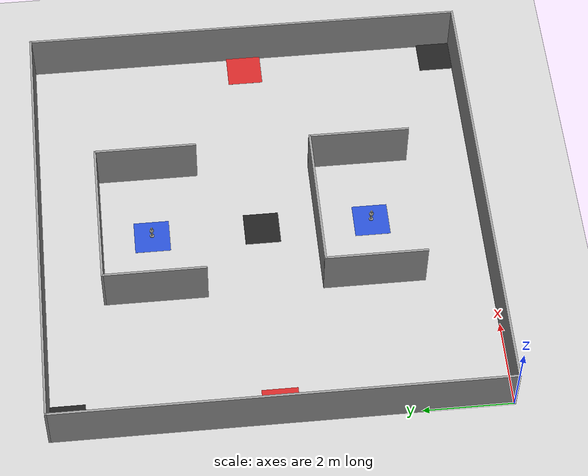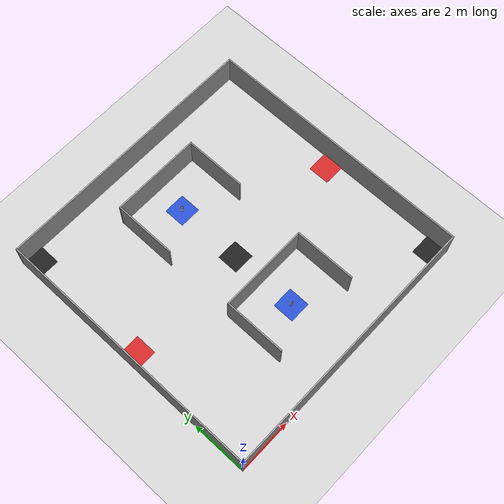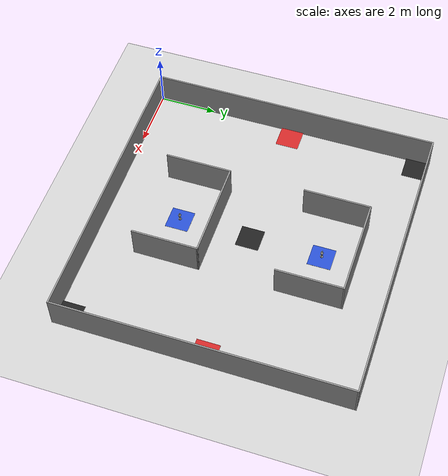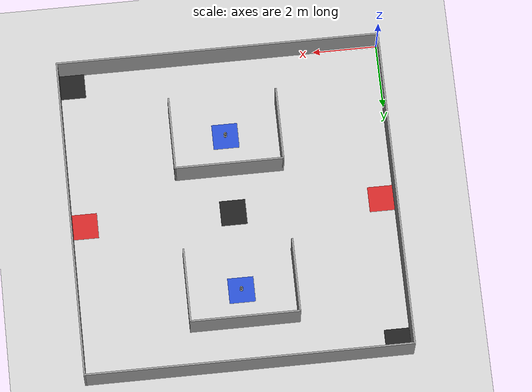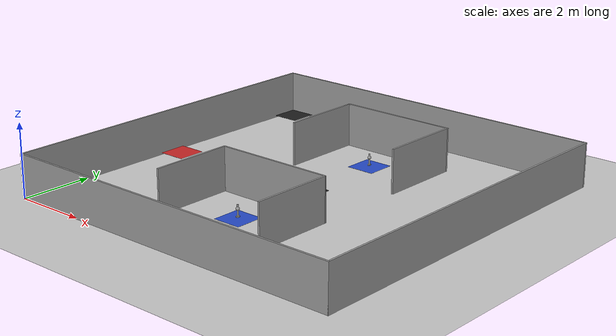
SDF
<sdf version="1.4">
 <world name="default">
  <light name="sun" type="directional">
   <pose>0 0 10 0 -0 0</pose>
   <diffuse>0.8 0.8 0.8 1</diffuse>
   <specular>0.2 0.2 0.2 1</specular>
   <attenuation>
    <range>1000</range>
    <constant>0.9</constant>
    <linear>0.01</linear>
    <quadratic>0.001</quadratic>
   </attenuation>
   <direction>-0.5 0.1 -0.9</direction>
  </light>
  <model name="ground_plane">
   <static>1</static>
   <link name="link">
    <collision name="collision">
     <geometry><plane><normal>0 0 1</normal><size>100 100</size></plane></geometry>
     <surface><friction><ode><mu>100</mu><mu2>50</mu2></ode></friction></surface>
    </collision>
    <visual name="visual">
     <cast_shadows>0</cast_shadows>
     <geometry><plane><normal>0 0 1</normal><size>100 100</size></plane></geometry>
     <material>
      <script><uri>file://media/materials/scripts/gazebo.material</uri><name>Gazebo/Grey</name></script>
     </material>
    </visual>
    <velocity_decay><linear>0</linear><angular>0</angular></velocity_decay>
   </link>
  </model>
  <physics type="ode">
   <max_step_size>0.002</max_step_size>
   <real_time_factor>1</real_time_factor>
   <real_time_update_rate>1000</real_time_update_rate>
   <gravity>0 0 -9.8</gravity>
  </physics>
  <scene><ambient>0.4 0.4 0.4 1</ambient><background>0.7 0.7 0.7 1</background><shadows>1</shadows></scene>
  <spherical_coordinates>
   <surface_model>EARTH_WGS84</surface_model>
   <latitude_deg>0</latitude_deg>
   <longitude_deg>0</longitude_deg>
   <elevation>0</elevation>
   <heading_deg>0</heading_deg>
  </spherical_coordinates>
  <model name="BoundaryWalls">
   <link name="Wall_0">
    <collision name="Wall_0_Collision">
     <geometry><box><size>10.05 0.05 1.2</size></box></geometry>
     <pose>0 0 0.6 0 -0 0</pose>
    </collision>
    <visual name="Wall_0_Visual">
     <pose>0 0 0.6 0 -0 0</pose>
     <geometry><box><size>10.05 0.05 1.2</size></box></geometry>
     <material>
      <script><uri>file://media/materials/scripts/gazebo.material</uri><name>Gazebo/Grey</name></script>
     </material>
    </visual>
    <velocity_decay><linear>0</linear><angular>0</angular></velocity_decay>
    <pose>5 10 0 0 -0 3.14159</pose>
   </link>
   <link name="Wall_1">
    <collision name="Wall_1_Collision">
     <geometry><box><size>10.05 0.05 1.2</size></box></geometry>
     <pose>0 0 0.6 0 -0 0</pose>
    </collision>
    <visual name="Wall_1_Visual">
     <pose>0 0 0.6 0 -0 0</pose>
     <geometry><box><size>10.05 0.05 1.2</size></box></geometry>
     <material>
      <script><uri>file://media/materials/scripts/gazebo.material</uri><name>Gazebo/Grey</name></script>
     </material>
    </visual>
    <velocity_decay><linear>0</linear><angular>0</angular></velocity_decay>
    <pose>0 5 0 0 0 -1.5708</pose>
   </link>
   <link name="Wall_2">
    <collision name="Wall_2_Collision">
     <geometry><box><size>10.05 0.05 1.2</size></box></geometry>
     <pose>0 0 0.6 0 -0 0</pose>
    </collision>
    <visual name="Wall_2_Visual">
     <pose>0 0 0.6 0 -0 0</pose>
     <geometry><box><size>10.05 0.05 1.2</size></box></geometry>
     <material>
      <script><uri>file://media/materials/scripts/gazebo.material</uri><name>Gazebo/Grey</name></script>
     </material>
    </visual>
    <velocity_decay><linear>0</linear><angular>0</angular></velocity_decay>
    <pose>5 0 0 0 -0 0</pose>
   </link>
   <link name="Wall_3">
    <collision name="Wall_3_Collision">
     <geometry><box><size>10.05 0.05 1.2</size></box></geometry>
     <pose>0 0 0.6 0 -0 0</pose>
    </collision>
    <visual name="Wall_3_Visual">
     <pose>0 0 0.6 0 -0 0</pose>
     <geometry><box><size>10.05 0.05 1.2</size></box></geometry>
     <material>
      <script><uri>file://media/materials/scripts/gazebo.material</uri><name>Gazebo/Grey</name></script>
     </material>
    </visual>
    <velocity_decay><linear>0</linear><angular>0</angular></velocity_decay>
    <pose>10 5 0 0 -0 1.5708</pose>
   </link>
   <static>1</static>
  </model>
  <model name="ProductUnitBase01">
   <link name="Wall_5">
    <collision name="Wall_5_Collision">
     <geometry><box><size>2.30 0.05 1.2</size></box></geometry>
     <pose>0 0 0.6 0 -0 0</pose>
    </collision>
    <visual name="Wall_5_Visual">
     <pose>0 0 0.6 0 -0 0</pose>
     <geometry><box><size>2.30 0.05 1.2</size></box></geometry>
     <material>
      <script><uri>file://media/materials/scripts/gazebo.material</uri><name>Gazebo/Grey</name></script>
     </material>
    </visual>
    <velocity_decay><linear>0</linear><angular>0</angular></velocity_decay>
    <pose>3.333 7.5 0 0 0 -1.5708</pose>
   </link>
   <link name="Wall_6">
    <collision name="Wall_6_Collision">
     <geometry><box><size>3.383 0.05 1.2</size></box></geometry>
     <pose>0 2.4 0.6 0 -0 0</pose>
    </collision>
    <visual name="Wall_6_Visual">
     <pose>0 2.4 0.6 0 -0 0</pose>
     <geometry><box><size>3.383 0.05 1.2</size></box></geometry>
     <material>
      <script><uri>file://media/materials/scripts/gazebo.material</uri><name>Gazebo/Grey</name></script>
     </material>
    </visual>
    <velocity_decay><linear>0</linear><angular>0</angular></velocity_decay>
    <pose>4.9995 6.25 0 0 -0 0</pose>
   </link>
   <link name="Wall_7">
    <collision name="Wall_7_Collision">
     <geometry><box><size>2.30 0.05 1.2</size></box></geometry>
     <pose>0 0 0.6 0 -0 0</pose>
    </collision>
    <visual name="Wall_7_Visual">
     <pose>0 0 0.6 0 -0 0</pose>
     <geometry><box><size>2.30 0.05 1.2</size></box></geometry>
     <material>
      <script><uri>file://media/materials/scripts/gazebo.material</uri><name>Gazebo/Grey</name></script>
     </material>
    </visual>
    <velocity_decay><linear>0</linear><angular>0</angular></velocity_decay>
    <pose>6.666 7.5 0 0 -0 1.5708</pose>
   </link>
   <static>1</static>
  </model>
  <model name="ProductUnitBase02">
   <link name="Wall_10">
    <collision name="Wall_10_Collision">
     <geometry><box><size>3.386 0.05 1.2</size></box></geometry>
     <pose>0 0 0.6 0 -0 0</pose>
    </collision>
    <visual name="Wall_10_Visual">
     <pose>0 0 0.6 0 -0 0</pose>
     <geometry><box><size>3.386 0.05 1.2</size></box></geometry>
     <material>
      <script><uri>file://media/materials/scripts/gazebo.material</uri><name>Gazebo/Grey</name></script>
     </material>
    </visual>
    <velocity_decay><linear>0</linear><angular>0</angular></velocity_decay>
    <pose>5.001 3.75 0 0 -0 0</pose>
   </link>
   <link name="Wall_11">
    <collision name="Wall_11_Collision">
     <geometry><box><size>2.3 0.05 1.2</size></box></geometry>
     <pose>0 0 0.6 0 -0 0</pose>
    </collision>
    <visual name="Wall_11_Visual">
     <pose>0 0 0.6 0 -0 0</pose>
     <geometry><box><size>2.3 0.05 1.2</size></box></geometry>
     <material>
      <script><uri>file://media/materials/scripts/gazebo.material</uri><name>Gazebo/Grey</name></script>
     </material>
    </visual>
    <velocity_decay><linear>0</linear><angular>0</angular></velocity_decay>
    <pose>6.6675 2.625 0 0 0 -1.57213</pose>
   </link>
   <link name="Wall_9">
    <collision name="Wall_9_Collision">
     <geometry><box><size>2.3 0.05 1.2</size></box></geometry>
     <pose>0 0 0.6 0 -0 0</pose>
    </collision>
    <visual name="Wall_9_Visual">
     <pose>0 0 0.6 0 -0 0</pose>
     <geometry><box><size>2.3 0.05 1.2</size></box></geometry>
     <material>
      <script><uri>file://media/materials/scripts/gazebo.material</uri><name>Gazebo/Grey</name></script>
     </material>
    </visual>
    <velocity_decay><linear>0</linear><angular>0</angular></velocity_decay>
    <pose>3.333 2.625 0 0 -0 1.5708</pose>
   </link>
   <static>1</static>
  </model>
  <model name="rest_area_1">
   <pose>0.4 9.6 0.05 0 -0 0</pose>
   <link name="link">
    <inertial>
     <mass>1</mass>
     <inertia><ixx>1</ixx><ixy>0</ixy><ixz>0</ixz><iyy>1</iyy><iyz>0</iyz><izz>1</izz></inertia>
    </inertial>
    <collision name="collision"><geometry><box><size>0.8 0.8 0.002</size></box></geometry></collision>
    <visual name="visual">
     <geometry><box><size>0.8 0.8 0.002</size></box></geometry>
     <material>
      <script><uri>file://media/materials/scripts/gazebo.material</uri><name>Gazebo/Black</name></script>
     </material>
    </visual>
    <velocity_decay><linear>0</linear><angular>0</angular></velocity_decay>
   </link>
   <static>0</static>
  </model>
  <model name="rest_area_2">
   <pose>5 5 0.05 0 -0 0</pose>
   <link name="link">
    <inertial>
     <mass>1</mass>
     <inertia><ixx>1</ixx><ixy>0</ixy><ixz>0</ixz><iyy>1</iyy><iyz>0</iyz><izz>1</izz></inertia>
    </inertial>
    <collision name="collision"><geometry><box><size>0.8 0.8 0.002</size></box></geometry></collision>
    <visual name="visual">
     <geometry><box><size>0.8 0.8 0.002</size></box></geometry>
     <material>
      <script><uri>file://media/materials/scripts/gazebo.material</uri><name>Gazebo/Black</name></script>
     </material>
    </visual>
    <velocity_decay><linear>0</linear><angular>0</angular></velocity_decay>
   </link>
   <static>0</static>
  </model>
  <model name="rest_area_3">
   <pose>9.6 0.4 0.05 0 -0 0</pose>
   <link name="link">
    <inertial>
     <mass>1</mass>
     <inertia><ixx>1</ixx><ixy>0</ixy><ixz>0</ixz><iyy>1</iyy><iyz>0</iyz><izz>1</izz></inertia>
    </inertial>
    <collision name="collision"><geometry><box><size>0.8 0.8 0.002</size></box></geometry></collision>
    <visual name="visual">
     <geometry><box><size>0.8 0.8 0.002</size></box></geometry>
     <material>
      <script><uri>file://media/materials/scripts/gazebo.material</uri><name>Gazebo/Black</name></script>
     </material>
    </visual>
    <velocity_decay><linear>0</linear><angular>0</angular></velocity_decay>
   </link>
   <static>0</static>
  </model>
  <model name="storage_area_1">
   <pose>0.4 5 0.05 0 -0 0</pose>
   <link name="link">
    <inertial>
     <mass>1</mass>
     <inertia><ixx>1</ixx><ixy>0</ixy><ixz>0</ixz><iyy>1</iyy><iyz>0</iyz><izz>1</izz></inertia>
    </inertial>
    <collision name="collision"><geometry><box><size>0.8 0.8 0.002</size></box></geometry></collision>
    <visual name="visual">
     <geometry><box><size>0.8 0.8 0.002</size></box></geometry>
     <material>
      <script><uri>file://media/materials/scripts/gazebo.material</uri><name>Gazebo/Red</name></script>
     </material>
    </visual>
    <velocity_decay><linear>0</linear><angular>0</angular></velocity_decay>
   </link>
   <static>0</static>
  </model>
  <model name="storage_area_2">
   <pose>9.6 5 0.05 0 -0 0</pose>
   <link name="link">
    <inertial>
     <mass>1</mass>
     <inertia><ixx>1</ixx><ixy>0</ixy><ixz>0</ixz><iyy>1</iyy><iyz>0</iyz><izz>1</izz></inertia>
    </inertial>
    <collision name="collision"><geometry><box><size>0.8 0.8 0.002</size></box></geometry></collision>
    <visual name="visual">
     <geometry><box><size>0.8 0.8 0.002</size></box></geometry>
     <material>
      <script><uri>file://media/materials/scripts/gazebo.material</uri><name>Gazebo/Red</name></script>
     </material>
    </visual>
    <velocity_decay><linear>0</linear><angular>0</angular></velocity_decay>
   </link>
   <static>0</static>
  </model>
  <model name="product_area_1">
   <pose>5 2.5 0.05 0 -0 0</pose>
   <link name="link">
    <inertial>
     <mass>1</mass>
     <inertia><ixx>1</ixx><ixy>0</ixy><ixz>0</ixz><iyy>1</iyy><iyz>0</iyz><izz>1</izz></inertia>
    </inertial>
    <collision name="collision"><geometry><box><size>0.8 0.8 0.002</size></box></geometry></collision>
    <visual name="visual">
     <geometry><box><size>0.8 0.8 0.002</size></box></geometry>
     <material>
      <script><uri>file://media/materials/scripts/gazebo.material</uri><name>Gazebo/Blue</name></script>
     </material>
    </visual>
    <velocity_decay><linear>0</linear><angular>0</angular></velocity_decay>
   </link>
   <static>0</static>
  </model>
  <model name="product_area_2">
   <pose>5 7.5 0.05 0 -0 0</pose>
   <link name="link">
    <inertial>
     <mass>1</mass>
     <inertia><ixx>1</ixx><ixy>0</ixy><ixz>0</ixz><iyy>1</iyy><iyz>0</iyz><izz>1</izz></inertia>
    </inertial>
    <collision name="collision"><geometry><box><size>0.8 0.8 0.002</size></box></geometry></collision>
    <visual name="visual">
     <geometry><box><size>0.8 0.8 0.002</size></box></geometry>
     <material>
      <script><uri>file://media/materials/scripts/gazebo.material</uri><name>Gazebo/Blue</name></script>
     </material>
    </visual>
    <velocity_decay><linear>0</linear><angular>0</angular></velocity_decay>
   </link>
   <static>0</static>
  </model>
  <include name="product1"><uri>model://product</uri><pose>5 2.5 0 0 0 0</pose></include>
  <include name="product2"><uri>model://product</uri><pose>5 7.5 0 0 0 0</pose></include>
 </world>
</sdf>

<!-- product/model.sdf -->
<sdf version="1.5">
  <model name='product'>
    <pose>0 0 0 0 -0 0</pose>
    <link name='base_bottom'>
      <pose>0 0 0.1 0 -0 0</pose>
      <inertial>
        <mass>0.0008</mass>
        <inertia>
          <ixx>0.0008</ixx>
          <ixy>0</ixy>
          <ixz>0</ixz>
          <iyy>0.0008</iyy>
          <iyz>0</iyz>
          <izz>0.0008</izz>
        </inertia>
      </inertial>
      <collision name='collision'>
        <geometry>
          <cylinder>
            <radius>0.05</radius>
            <length>0.02</length>
          </cylinder>
        </geometry>
        <max_contacts>10</max_contacts>
      </collision>
      <visual name='visual'>
        <geometry>
          <cylinder>
            <radius>0.05</radius>
            <length>0.02</length>
          </cylinder>
        </geometry>
        <material>
          <script>
            <uri>file://media/materials/scripts/gazebo.material</uri>
            <name>Gazebo/Grey</name>
          </script>
        </material>
      </visual>
      <self_collide>0</self_collide>
      <kinematic>0</kinematic>
      <gravity>1</gravity>
    </link>
    <link name='middle'>
      <pose>0 0 0.13 0 0 0</pose>
      <inertial>
        <mass>0.0012</mass>
        <inertia>
          <ixx>0.0012</ixx>
          <ixy>0</ixy>
          <ixz>0</ixz>
          <iyy>0.0012</iyy>
          <iyz>0</iyz>
          <izz>0.0012</izz>
        </inertia>
      </inertial>
      <collision name='collision'>
        <pose>0 0 0.13 0 -0 0</pose>
        <geometry>
          <cylinder>
            <radius>0.02</radius>
            <length>0.3</length>
          </cylinder>
        </geometry>
        <max_contacts>10</max_contacts>
      </collision>
      <visual name='visual'>
        <pose>0 0 0.13 0 -0 0</pose>
        <geometry>
          <cylinder>
            <radius>0.02</radius>
            <length>0.3</length>
          </cylinder>
        </geometry>
        <material>
          <script>
            <uri>file://media/materials/scripts/gazebo.material</uri>
            <name>Gazebo/Grey</name>
          </script>
        </material>
      </visual>
      <self_collide>0</self_collide>
      <kinematic>0</kinematic>
      <gravity>1</gravity>
    </link>
    <link name='base_top'>
      <pose>0 0 0.3 0 0 0</pose>
      <inertial>
        <mass>0.002</mass>
        <inertia>
          <ixx>0.002</ixx>
          <ixy>0</ixy>
          <ixz>0</ixz>
          <iyy>0.002</iyy>
          <iyz>0</iyz>
          <izz>0.002</izz>
        </inertia>
      </inertial>
      <collision name='collision'>
        <geometry>
          <sphere>
            <radius>0.05</radius>
          </sphere>
        </geometry>
        <max_contacts>10</max_contacts>
      </collision>
      <visual name='visual'>
        <geometry>
          <sphere>
            <radius>0.05</radius>
          </sphere>
        </geometry>
        <material>
          <script>
            <uri>file://media/materials/scripts/gazebo.material</uri>
            <name>Gazebo/Grey</name>
          </script>
        </material>
      </visual>
      <self_collide>0</self_collide>
      <kinematic>0</kinematic>
      <gravity>1</gravity>
    </link>
    <joint name='top_middle' type='revolute'>
      <pose>0 0 0 0 0 0</pose>
      <child>base_top</child>
      <parent>middle</parent>
      <axis>
        <xyz>0 0 1</xyz>
        <limit>
          <lower>-1e+16</lower>
          <upper>1e+16</upper>
        </limit>
      </axis>
    </joint>
    <joint name='bottom_midle' type='revolute'>
      <pose>0 0 0 0 0 0</pose>
      <child>base_bottom</child>
      <parent>middle</parent>
      <axis>
        <xyz>0 0 1</xyz>
        <limit>
          <lower>-1e+16</lower>
          <upper>1e+16</upper>
        </limit>
      </axis>
    </joint>
  </model>
</sdf>
